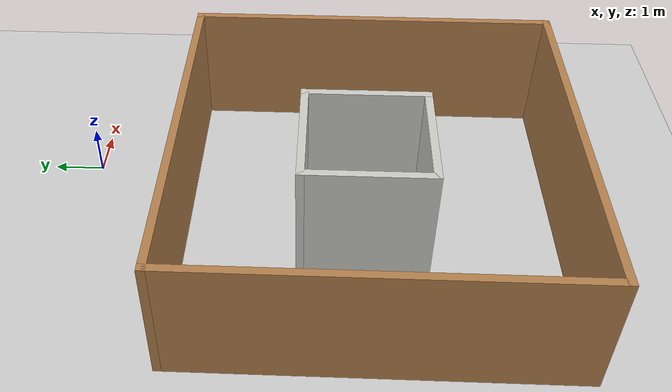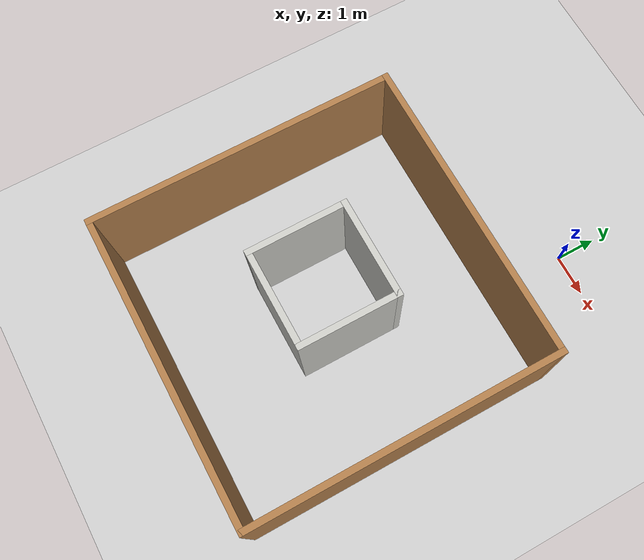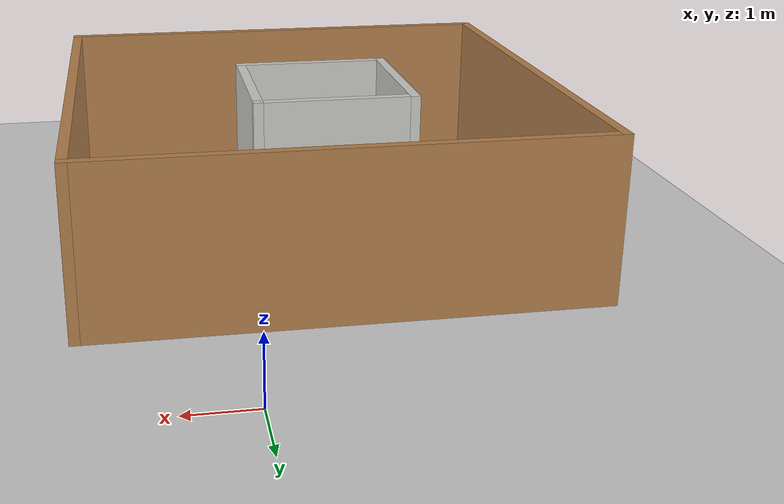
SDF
<sdf version="1.6">
 <world name="default">
  <light name="sun" type="directional">
   <pose>0 0 10 0 -0 0</pose>
   <diffuse>0.8 0.8 0.8 1</diffuse>
   <specular>0.2 0.2 0.2 1</specular>
   <attenuation>
    <range>1000</range>
    <constant>0.9</constant>
    <linear>0.01</linear>
    <quadratic>0.001</quadratic>
   </attenuation>
   <direction>-0.5 0.1 -0.9</direction>
  </light>
  <model name="ground_plane">
   <static>1</static>
   <link name="link">
    <collision name="collision">
     <geometry><plane><normal>0 0 1</normal><size>100 100</size></plane></geometry>
     <surface><friction><ode><mu>100</mu><mu2>50</mu2></ode></friction></surface>
    </collision>
    <visual name="visual">
     <cast_shadows>0</cast_shadows>
     <geometry><plane><normal>0 0 1</normal><size>100 100</size></plane></geometry>
     <material>
      <script><uri>file://media/materials/scripts/gazebo.material</uri><name>Gazebo/Grey</name></script>
     </material>
    </visual>
   </link>
  </model>
  <gravity>0 0 -9.8</gravity>
  <magnetic_field>6e-06 2.3e-05 -4.2e-05</magnetic_field>
  <atmosphere type="adiabatic"/>
  <physics name="default_physics" default="0" type="ode">
   <max_step_size>0.001</max_step_size>
   <real_time_factor>1</real_time_factor>
   <real_time_update_rate>1000</real_time_update_rate>
  </physics>
  <scene><ambient>0.4 0.4 0.4 1</ambient><background>0.7 0.7 0.7 1</background><shadows>1</shadows></scene>
  <spherical_coordinates>
   <surface_model>EARTH_WGS84</surface_model>
   <latitude_deg>0</latitude_deg>
   <longitude_deg>0</longitude_deg>
   <elevation>0</elevation>
   <heading_deg>0</heading_deg>
  </spherical_coordinates>
  <model name="infiniteWorld.world">
   <pose>-1.44239 -5.69266 0 0 -0 0</pose>
   <link name="Wall_31">
    <collision name="Wall_31_Collision">
     <geometry><box><size>7.5 0.15 2.5</size></box></geometry>
     <pose>0 0 1.25 0 -0 0</pose>
    </collision>
    <visual name="Wall_31_Visual">
     <pose>0 0 1.25 0 -0 0</pose>
     <geometry><box><size>7.5 0.15 2.5</size></box></geometry>
     <material>
      <script><uri>file://media/materials/scripts/gazebo.material</uri><name>Gazebo/Wood</name></script>
      <ambient>1 1 1 1</ambient>
     </material>
     <meta><layer>0</layer></meta>
    </visual>
    <pose>0 -3.675 0 0 -0 0</pose>
   </link>
   <link name="Wall_32">
    <collision name="Wall_32_Collision">
     <geometry><box><size>7.5 0.15 2.5</size></box></geometry>
     <pose>0 0 1.25 0 -0 0</pose>
    </collision>
    <visual name="Wall_32_Visual">
     <pose>0 0 1.25 0 -0 0</pose>
     <geometry><box><size>7.5 0.15 2.5</size></box></geometry>
     <material>
      <script><uri>file://media/materials/scripts/gazebo.material</uri><name>Gazebo/Wood</name></script>
      <ambient>1 1 1 1</ambient>
     </material>
     <meta><layer>0</layer></meta>
    </visual>
    <pose>3.675 0 0 0 -0 1.5708</pose>
   </link>
   <link name="Wall_33">
    <collision name="Wall_33_Collision">
     <geometry><box><size>7.5 0.15 2.5</size></box></geometry>
     <pose>0 0 1.25 0 -0 0</pose>
    </collision>
    <visual name="Wall_33_Visual">
     <pose>0 0 1.25 0 -0 0</pose>
     <geometry><box><size>7.5 0.15 2.5</size></box></geometry>
     <material>
      <script><uri>file://media/materials/scripts/gazebo.material</uri><name>Gazebo/Wood</name></script>
      <ambient>1 1 1 1</ambient>
     </material>
     <meta><layer>0</layer></meta>
    </visual>
    <pose>0 3.675 0 0 -0 3.14159</pose>
   </link>
   <link name="Wall_34">
    <collision name="Wall_34_Collision">
     <geometry><box><size>7.5 0.15 2.5</size></box></geometry>
     <pose>0 0 1.25 0 -0 0</pose>
    </collision>
    <visual name="Wall_34_Visual">
     <pose>0 0 1.25 0 -0 0</pose>
     <geometry><box><size>7.5 0.15 2.5</size></box></geometry>
     <material>
      <script><uri>file://media/materials/scripts/gazebo.material</uri><name>Gazebo/Wood</name></script>
      <ambient>1 1 1 1</ambient>
     </material>
     <meta><layer>0</layer></meta>
    </visual>
    <pose>-3.675 0 0 0 0 -1.5708</pose>
   </link>
   <link name="Wall_42">
    <collision name="Wall_42_Collision">
     <geometry><box><size>2.5 0.15 2.5</size></box></geometry>
     <pose>0 0 1.25 0 -0 0</pose>
    </collision>
    <visual name="Wall_42_Visual">
     <pose>0 0 1.25 0 -0 0</pose>
     <geometry><box><size>2.5 0.15 2.5</size></box></geometry>
     <material>
      <script><uri>file://media/materials/scripts/gazebo.material</uri><name>Gazebo/CeilingTiled</name></script>
      <ambient>1 1 1 1</ambient>
     </material>
     <meta><layer>0</layer></meta>
    </visual>
    <pose>-1.38507 0.178664 0 0 0 -1.5708</pose>
   </link>
   <link name="Wall_43">
    <collision name="Wall_43_Collision">
     <geometry><box><size>2.5 0.15 2.5</size></box></geometry>
     <pose>0 0 1.25 0 -0 0</pose>
    </collision>
    <visual name="Wall_43_Visual">
     <pose>0 0 1.25 0 -0 0</pose>
     <geometry><box><size>2.5 0.15 2.5</size></box></geometry>
     <material>
      <script><uri>file://media/materials/scripts/gazebo.material</uri><name>Gazebo/CeilingTiled</name></script>
      <ambient>1 1 1 1</ambient>
     </material>
     <meta><layer>0</layer></meta>
    </visual>
    <pose>-0.21007 -0.996336 0 0 -0 0</pose>
   </link>
   <link name="Wall_44">
    <collision name="Wall_44_Collision">
     <geometry><box><size>2.5 0.15 2.5</size></box></geometry>
     <pose>0 0 1.25 0 -0 0</pose>
    </collision>
    <visual name="Wall_44_Visual">
     <pose>0 0 1.25 0 -0 0</pose>
     <geometry><box><size>2.5 0.15 2.5</size></box></geometry>
     <material>
      <script><uri>file://media/materials/scripts/gazebo.material</uri><name>Gazebo/CeilingTiled</name></script>
      <ambient>1 1 1 1</ambient>
     </material>
     <meta><layer>0</layer></meta>
    </visual>
    <pose>0.96493 0.178664 0 0 -0 1.5708</pose>
   </link>
   <link name="Wall_45">
    <collision name="Wall_45_Collision">
     <geometry><box><size>2.5 0.15 2.5</size></box></geometry>
     <pose>0 0 1.25 0 -0 0</pose>
    </collision>
    <visual name="Wall_45_Visual">
     <pose>0 0 1.25 0 -0 0</pose>
     <geometry><box><size>2.5 0.15 2.5</size></box></geometry>
     <material>
      <script><uri>file://media/materials/scripts/gazebo.material</uri><name>Gazebo/CeilingTiled</name></script>
      <ambient>1 1 1 1</ambient>
     </material>
     <meta><layer>0</layer></meta>
    </visual>
    <pose>-0.21007 1.35366 0 0 -0 3.14159</pose>
   </link>
   <static>1</static>
  </model>
 </world>
</sdf>
